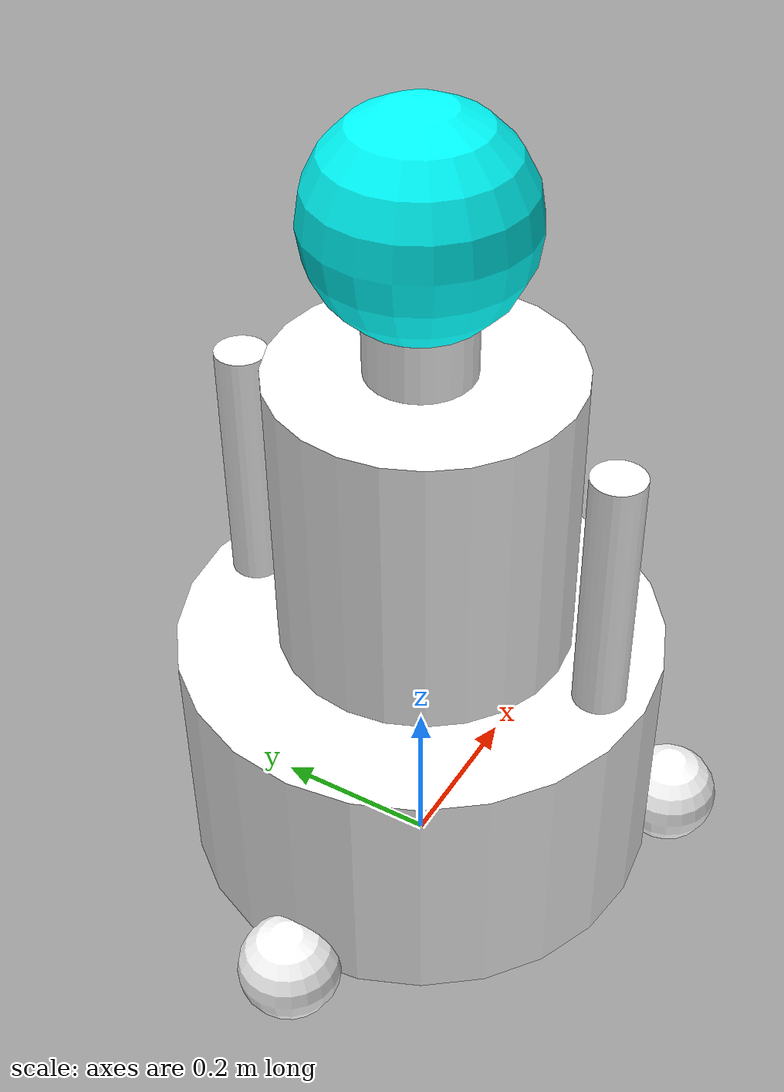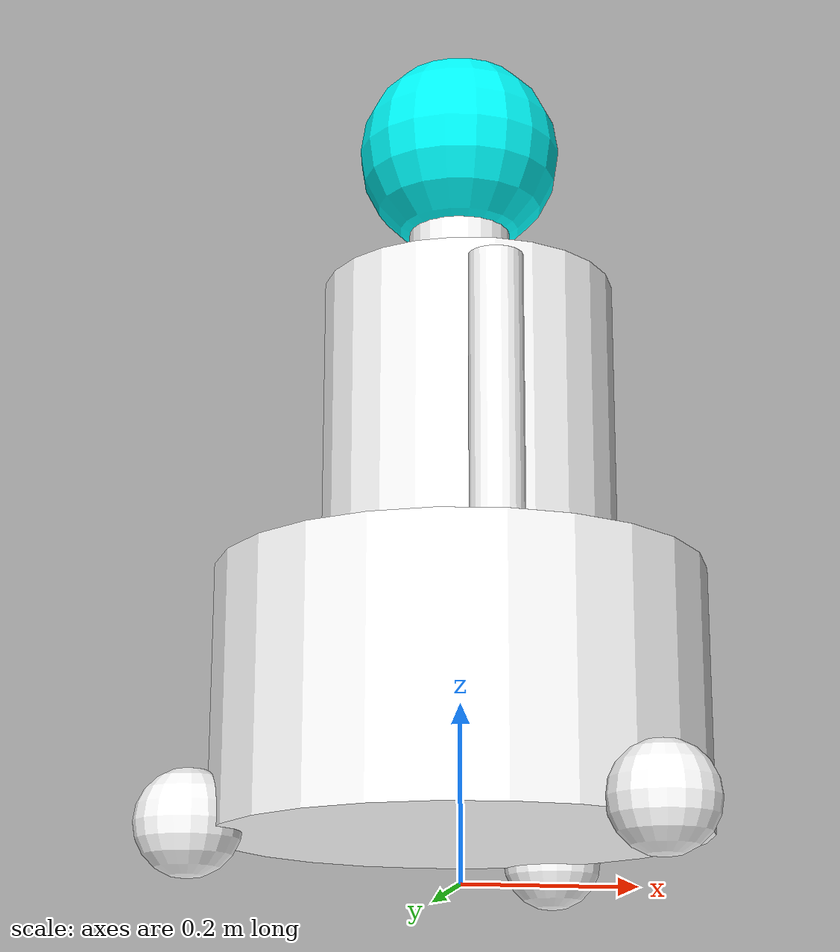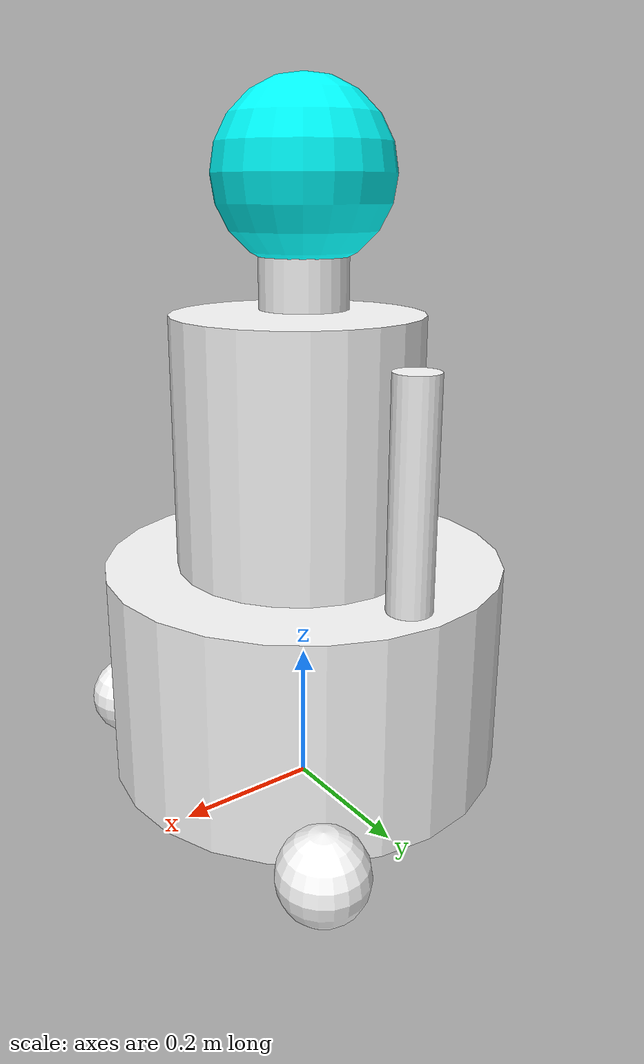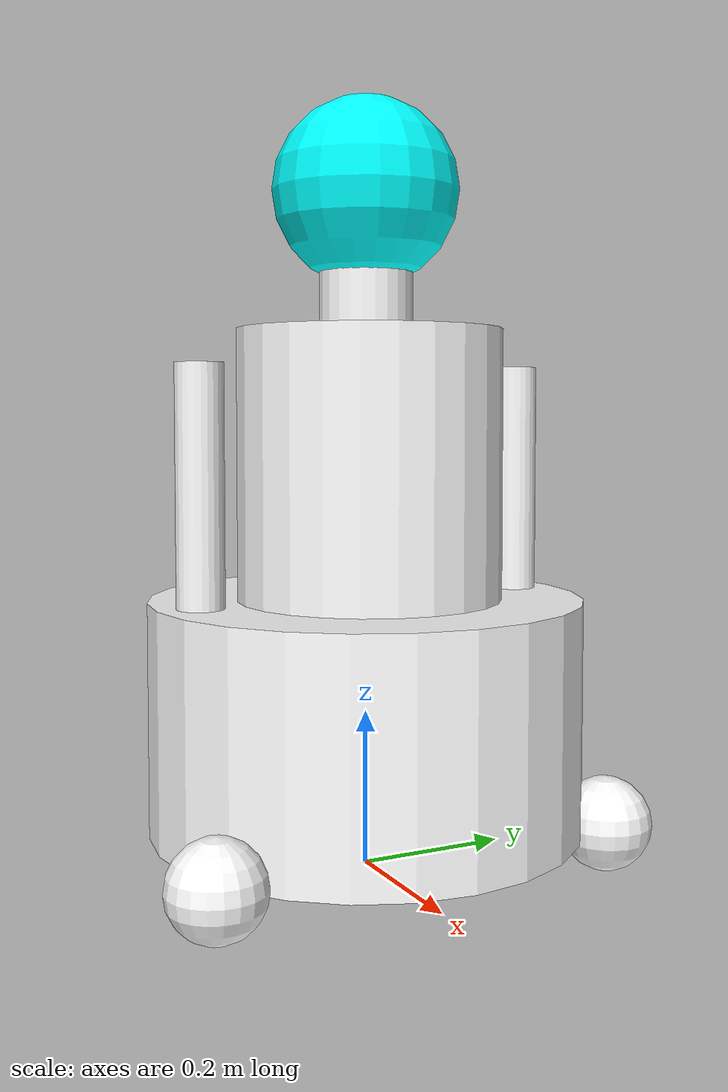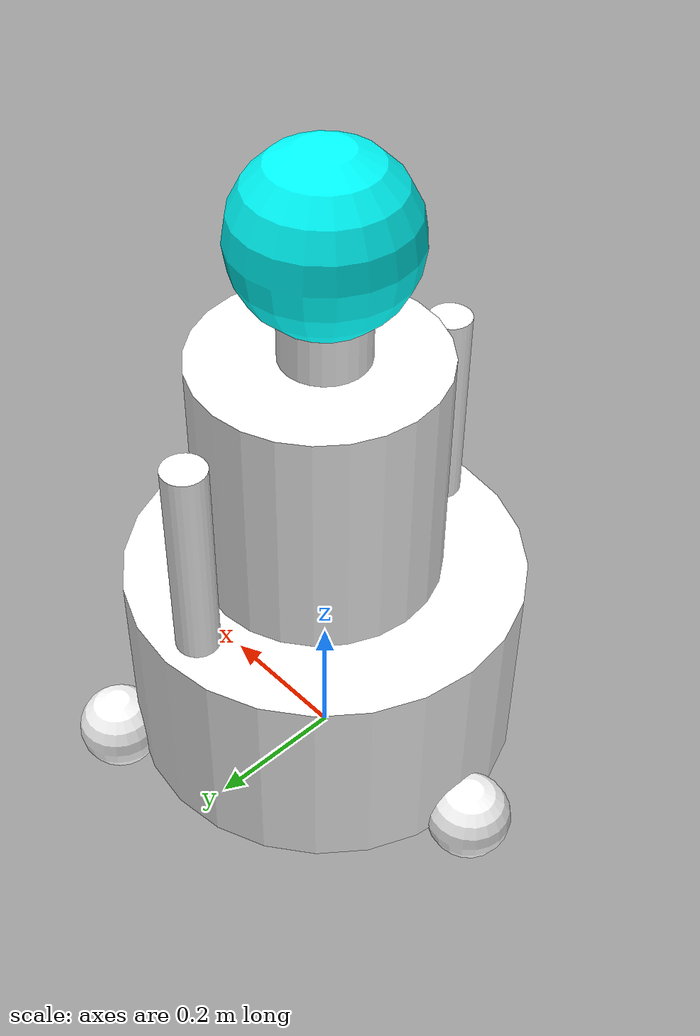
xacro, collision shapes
<?xml version="1.0"?>
<robot xmlns:xacro="http://www.ros.org/wiki/xacro" name="semubot">

  <xacro:arg name="sim" default="false"/>
  <xacro:arg name="camera" default="false"/>

  <xacro:include filename="$(find semubot_description)/urdf/head.urdf.xacro"/>
  <xacro:include filename="$(find semubot_description)/urdf/ros2_control.xacro"/>
  <xacro:if value="$(arg sim)">
    <xacro:include filename="$(find semubot_description)/urdf/semubot.gazebo.xacro"/>
  </xacro:if>

  <material name="white">
    <color rgba="1 1 1 1"/>
  </material>

  <material name="cyan">
    <color rgba="0 1 1 1"/>
  </material>

  <material name="black">
    <color rgba="0 0 0 1"/>
  </material>

  <!-- Base Link -->
  <link name="base_link">
    <visual>
      <origin xyz="0 0 0.04" rpy="0 0 0"/>
      <geometry>
        <mesh filename="package://semubot_description/meshes/movement_frame.stl" scale="1 1 1"/>
      </geometry>
      <material name="white"/>
    </visual>
    <collision>
      <origin xyz="0 0 0.2" rpy="0 0 0"/>
      <geometry>
        <cylinder radius="0.28" length="0.3"/>
      </geometry>
    </collision>
    <inertial>
      <origin xyz="0 0 0.02" rpy="0 0 0"/>
      <mass value="15.0"/>
      <inertia ixx="0.3" ixy="0.0" ixz="0.0" iyy="0.3" iyz="0.0" izz="0.3"/>
    </inertial>
  </link>

  <!-- Macro for Omni-ball -->
  <xacro:macro name="omni_ball_macro" params="name xyz rpy scale mass ixx iyy izz">
    <link name="${name}">
      <visual>
        <origin xyz="0 0 0" rpy="0 0 0"/>
        <geometry>
          <mesh filename="package://semubot_description/meshes/omni_ball.stl" scale="${scale} ${scale} ${scale}"/>
        </geometry>
        <material name="white"/>
      </visual>
      <collision>
        <origin xyz="0 0 0" rpy="0 0 0"/>
        <geometry>
          <sphere radius="0.06"/>
        </geometry>
      </collision>
      <inertial>
        <origin xyz="0 0 0" rpy="0 0 0"/>
        <mass value="${mass}"/>
        <inertia ixx="${ixx}" ixy="0.0" ixz="0.0" iyy="${iyy}" iyz="0.0" izz="${izz}"/>
      </inertial>
    </link>
  </xacro:macro>

  <!-- Omni-balls -->
  <xacro:omni_ball_macro name="omni_ball_1" xyz="0 0 0" rpy="0 0 0" scale="1" mass="0.3" ixx="0.003" iyy="0.003" izz="0.003"/>
  <xacro:omni_ball_macro name="omni_ball_2" xyz="0 0 0" rpy="0 0 0" scale="1" mass="0.3" ixx="0.003" iyy="0.003" izz="0.003"/>
  <xacro:omni_ball_macro name="omni_ball_3" xyz="0 0 0" rpy="0 0 0" scale="1" mass="0.3" ixx="0.003" iyy="0.003" izz="0.003"/>

  <!-- Joints for Omni-balls -->
  <joint name="omni_ball_1_joint" type="continuous">
    <parent link="base_link"/>
    <child link="omni_ball_1"/>
    <origin xyz="0.16 0.265 0.06" rpy="0 0 ${2*pi/3}"/>
    <axis xyz="1 0 0"/>
    <limit effort="50" velocity="1.0"/>
  </joint>

  <joint name="omni_ball_2_joint" type="continuous">
    <parent link="base_link"/>
    <child link="omni_ball_2"/>
    <origin xyz="0.16 -0.265 0.06" rpy="0 0 ${-2*pi/3}"/>
    <axis xyz="1 0 0"/>
    <limit effort="50" velocity="1.0"/>
  </joint>

  <joint name="omni_ball_3_joint" type="continuous">
    <parent link="base_link"/>
    <child link="omni_ball_3"/>
    <origin xyz="-0.3 0 0.06" rpy="0 0 0"/>
    <axis xyz="1 0 0"/>
    <limit effort="50" velocity="1.0"/>
  </joint>

  <!-- Main Body -->
  <link name="main_body">
    <visual>
      <geometry>
        <mesh filename="package://semubot_description/meshes/body.stl" scale="1 1 1"/>
      </geometry>
      <material name="white"/>
    </visual>
    <collision>
      <origin xyz="0.01 0 0.4" rpy="0 0 0"/>
      <geometry>
        <cylinder radius="0.17" length="0.5"/>
      </geometry>
    </collision>
    <inertial>
      <origin xyz="0 0 0.05" rpy="0 0 0"/>
      <mass value="9.0"/>
      <inertia ixx="0.15" ixy="0.0" ixz="0.0" iyy="0.15" iyz="0.0" izz="0.15"/>
    </inertial>
  </link>

  <joint name="body_joint" type="fixed">
    <parent link="base_link"/>
    <child link="main_body"/>
    <origin xyz="0 0 0.045" rpy="0 0 0"/>
  </joint>

  <!-- Left Arm -->
  <link name="left_arm">
    <visual>
      <geometry>
        <mesh filename="package://semubot_description/meshes/left_hand.stl" scale="1 1 1"/>
      </geometry>
      <material name="white"/>
    </visual>
    <collision>
      <origin xyz="0 0.05 -0.1" rpy="0 0 0"/>
      <geometry>
        <cylinder radius="0.03" length="0.3"/>
      </geometry>
    </collision>
    <inertial>
      <origin xyz="0 0 0" rpy="0 0 0"/>
      <mass value="1.5"/>
      <inertia ixx="0.03" ixy="0.0" ixz="0.0" iyy="0.03" iyz="0.0" izz="0.03"/>
    </inertial>
  </link>

  <joint name="left_arm_joint" type="revolute">
    <parent link="main_body"/>
    <child link="left_arm"/>
    <origin xyz="0 0.175 0.555" rpy="0 0 0"/>
    <axis xyz="0 1 0"/>
    <limit lower="-1.57" upper="1.57" effort="10" velocity="1.0"/>
  </joint>

  <!-- Right Arm -->
  <link name="right_arm">
    <visual>
      <geometry>
        <mesh filename="package://semubot_description/meshes/right_hand.stl" scale="1 1 1"/>
      </geometry>
      <material name="white"/>
    </visual>
    <collision>
      <origin xyz="0 -0.05 -0.1" rpy="0 0 0"/>
      <geometry>
        <cylinder radius="0.03" length="0.3"/>
      </geometry>
    </collision>
    <inertial>
      <origin xyz="0 0 0" rpy="0 0 0"/>
      <mass value="1.5"/>
      <inertia ixx="0.03" ixy="0.0" ixz="0.0" iyy="0.03" iyz="0.0" izz="0.03"/>
    </inertial>
  </link>

  <joint name="right_arm_joint" type="revolute">
    <parent link="main_body"/>
    <child link="right_arm"/>
    <origin xyz="0 -0.175 0.555" rpy="0 0 0"/>
    <axis xyz="0 1 0"/>
    <limit lower="-1.57" upper="1.57" effort="10" velocity="1.0"/>
  </joint>

  <!-- Head -->
  <xacro:head_macro parent="main_body" xyz="0 0 0.705" rpy="0 0 0" sim="$(arg sim)" camera="$(arg camera)"/>

  <!-- ros2_control Hardware Interface (real robot only; Gazebo uses its own plugins) -->
  <xacro:unless value="$(arg sim)">
    <xacro:semubot_ros2_control wheel_radius="0.06" base_radius="0.305"/>
  </xacro:unless>
</robot>

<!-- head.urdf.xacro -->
<robot xmlns:xacro="http://www.ros.org/wiki/xacro">

  <xacro:if value="$(arg camera)">
    <xacro:include filename="$(find realsense2_description)/urdf/_d435i.urdf.xacro"/>
  </xacro:if>

  <xacro:macro name="head_macro" params="parent xyz rpy sim:=false camera:=false">

    <!-- Head Base -->
    <link name="head_base">
      <visual>
        <geometry>
          <mesh filename="package://semubot_description/meshes/head_base.stl" scale="1 1 1"/>
        </geometry>
        <material name="white"/>
      </visual>
      <collision>
        <origin xyz="0 0 0" rpy="0 0 0"/>
        <geometry>
          <cylinder radius="0.06" length="0.1"/>
        </geometry>
      </collision>
      <inertial>
        <origin xyz="0 0 0" rpy="0 0 0"/>
        <mass value="1.2"/>
        <inertia ixx="0.03" ixy="0.0" ixz="0.0" iyy="0.03" iyz="0.0" izz="0.03"/>
      </inertial>
    </link>

    <joint name="head_joint" type="fixed">
      <parent link="${parent}"/>
      <child link="head_base"/>
      <origin xyz="${xyz}" rpy="${rpy}"/>
    </joint>

    <!-- Head Scalp -->
    <link name="head_scalp">
      <visual>
        <geometry>
          <mesh filename="package://semubot_description/meshes/head_scalp.stl" scale="1 1 1"/>
        </geometry>
        <material name="cyan"/>
      </visual>
      <collision>
        <origin xyz="0 0 0.12" rpy="0 0 0"/>
        <geometry>
          <sphere radius="0.12"/>
        </geometry>
      </collision>
      <inertial>
        <origin xyz="0 0 0" rpy="0 0 0"/>
        <mass value="0.6"/>
        <inertia ixx="0.015" ixy="0.0" ixz="0.0" iyy="0.015" iyz="0.0" izz="0.015"/>
      </inertial>
    </link>

    <joint name="head_scalp_joint" type="fixed">
      <parent link="head_base"/>
      <child link="head_scalp"/>
      <origin xyz="0 0 0" rpy="0 0 0"/>
    </joint>

    <!-- Head Screen -->
    <link name="head_screen">
      <visual>
        <geometry>
          <mesh filename="package://semubot_description/meshes/head_screen.stl" scale="1 1 1"/>
        </geometry>
        <material name="black"/>
      </visual>
      <collision>
        <origin xyz="0 0 0" rpy="0 0 0"/>
        <geometry>
          <box size="0.1 0.01 0.08"/>
        </geometry>
      </collision>
      <inertial>
        <origin xyz="0 0 0" rpy="0 0 0"/>
        <mass value="0.6"/>
        <inertia ixx="0.015" ixy="0.0" ixz="0.0" iyy="0.015" iyz="0.0" izz="0.015"/>
      </inertial>
    </link>

    <joint name="head_screen_joint" type="fixed">
      <parent link="head_base"/>
      <child link="head_screen"/>
      <origin xyz="0 0 0" rpy="0 0 0"/>
    </joint>

    <xacro:if value="${camera}">
      <xacro:sensor_d435i parent="head_base" name="camera" use_nominal_extrinsics="${sim}">
        <origin xyz="0.12 0 0.13" rpy="0 0 0"/>
      </xacro:sensor_d435i>
    </xacro:if>

  </xacro:macro>

</robot>
